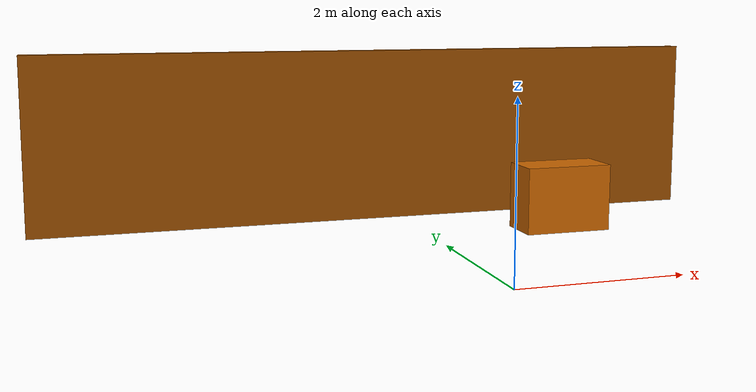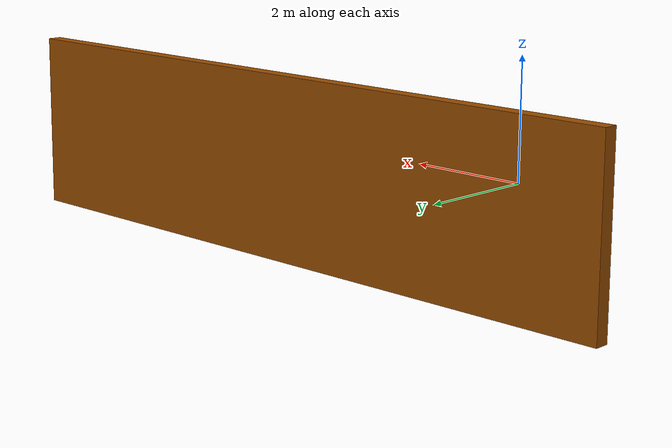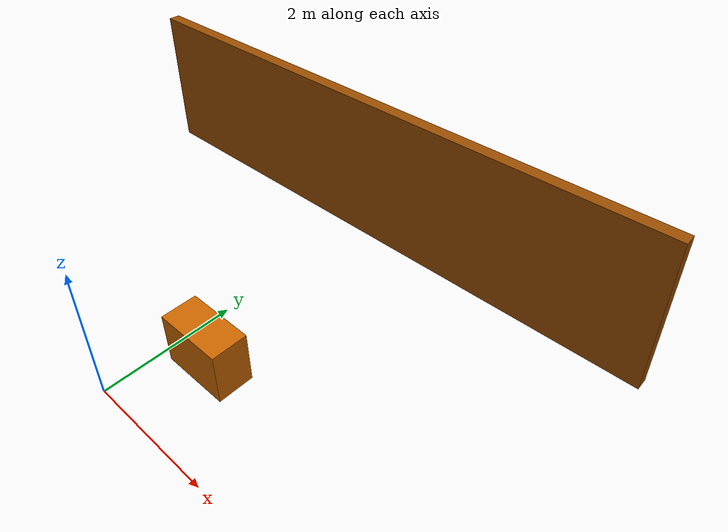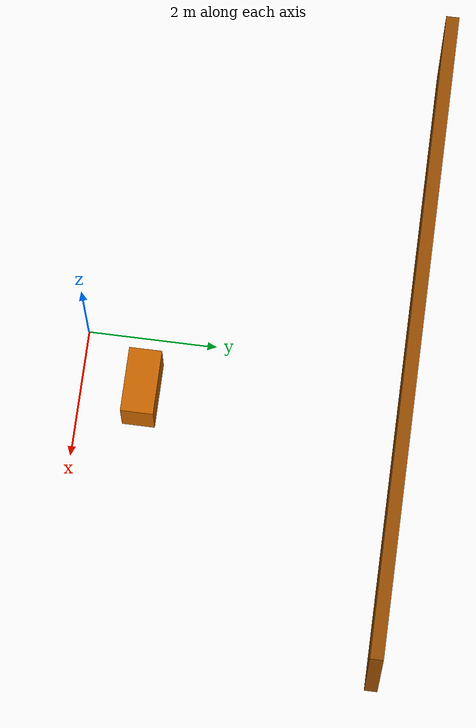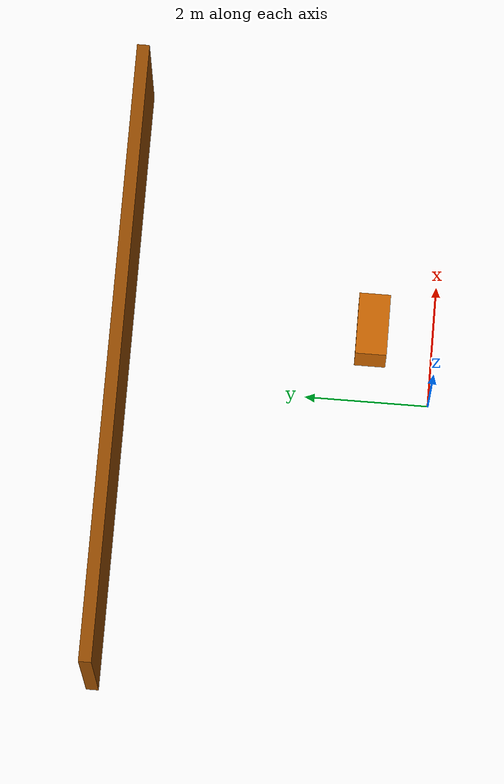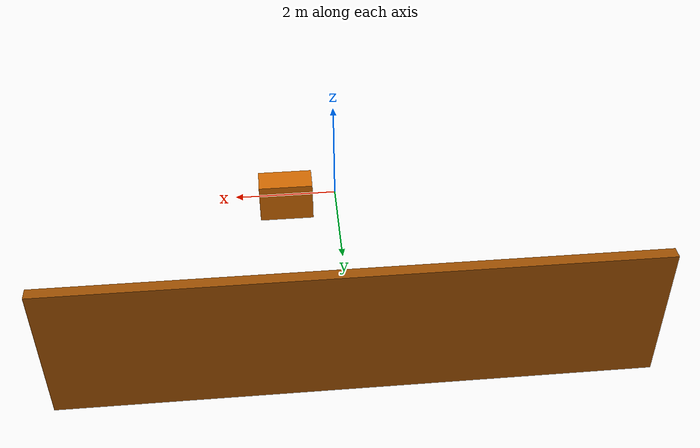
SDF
<?xml version="1.0" ?>
<sdf version="1.6">
  <model name="office_building">
    <static>true</static>

    <!-- Example of a wall -->
    <link name="wall_1">
      <pose>0 5 1 0 0 0</pose>

      <!-- Collision element -->
      <collision name="collision">
        <geometry>
          <box>
            <size>10 0.2 2.5</size> <!-- Length, Width, Height -->
          </box>
        </geometry>
      </collision>

      <!-- Visual element -->
      <visual name="visual">
        <geometry>
          <box>
            <size>10 0.2 2.5</size>
          </box>
        </geometry>
        <material>
          <ambient>0.6 0.3 0 1</ambient> <!-- Wall color -->
        </material>
      </visual>
    </link>

    <!-- Example of a desk -->
    <link name="desk_1">
      <pose>1 1 0.75 0 0 0</pose>

      <!-- Collision element -->
      <collision name="collision">
        <geometry>
          <box>
            <size>1 0.5 0.75</size> <!-- Desk dimensions -->
          </box>
        </geometry>
      </collision>

      <!-- Visual element -->
      <visual name="visual">
        <geometry>
          <box>
            <size>1 0.5 0.75</size>
          </box>
        </geometry>
        <material>
          <ambient>0.8 0.4 0 1</ambient> <!-- Desk color -->
        </material>
      </visual>
    </link>

  </model>
</sdf>
